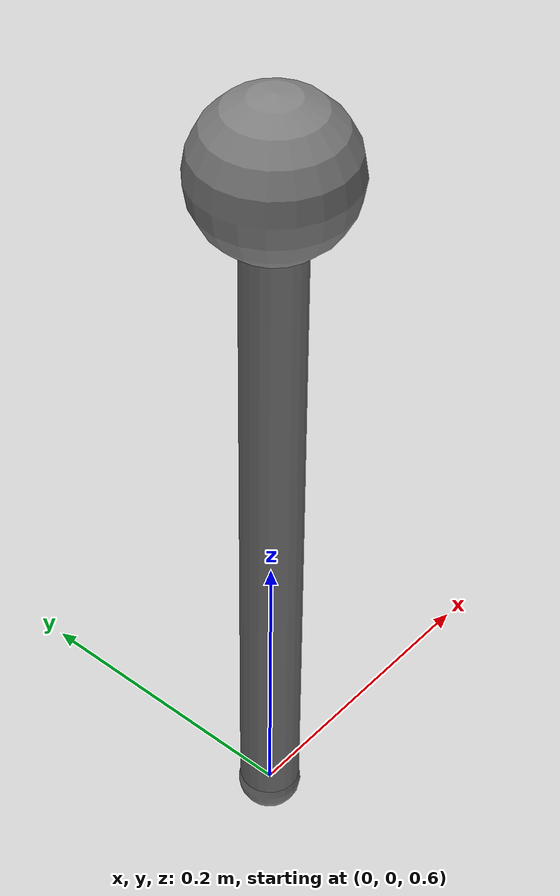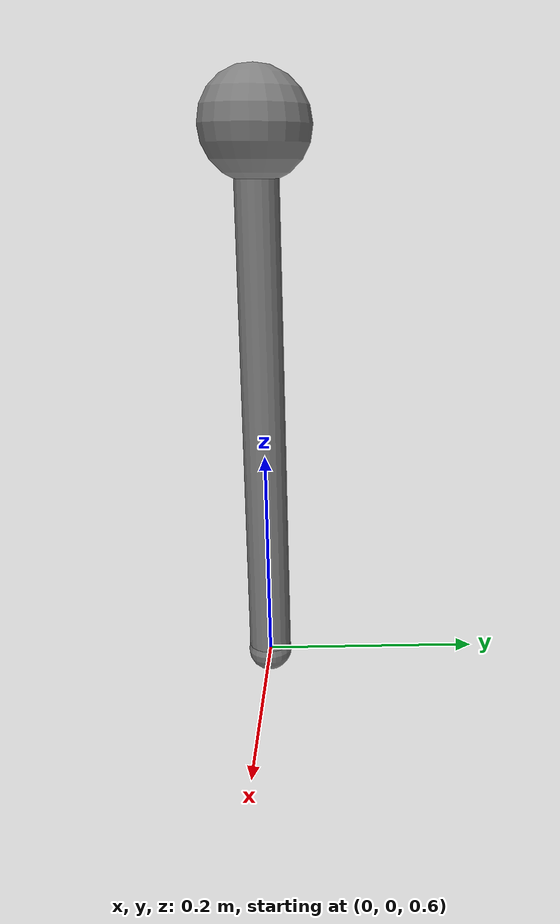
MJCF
<mujoco model="ball_pendulum">

  <worldbody>
    <body name="pole" pos="0 0 .6">
      <joint name="ball" type="ball" damping="0.1"/>
      <geom name="base" type="sphere" size="0.021" mass="0"/>
      <geom name="pole" type="capsule" fromto="0 0 0 0 0 0.5" size="0.02" mass="0"/>
      <geom name="mass" type="sphere" pos="0 0 0.5" size="0.05" mass="1"/>
    </body>
  </worldbody>

  <actuator>
    <position name="posx" joint="ball" gear="1 0 0" ctrlrange="-1.571 1.571" ctrllimited="true" kp="10"/>
    <position name="posy" joint="ball" gear="0 1 0" ctrlrange="-1.571 1.571" ctrllimited="true" kp="10"/>
    <position name="posz" joint="ball" gear="0 0 1" ctrlrange="-1.571 1.571" ctrllimited="true" kp="10"/>

    <velocity name="velx" joint="ball" gear="1 0 0" ctrlrange="-1 1" ctrllimited="true" kv="2.0"/>
    <velocity name="vely" joint="ball" gear="0 1 0" ctrlrange="-1 1" ctrllimited="true" kv="2.0"/>
    <velocity name="velz" joint="ball" gear="0 0 1" ctrlrange="-1 1" ctrllimited="true" kv="0.2"/>

  </actuator>
</mujoco>
